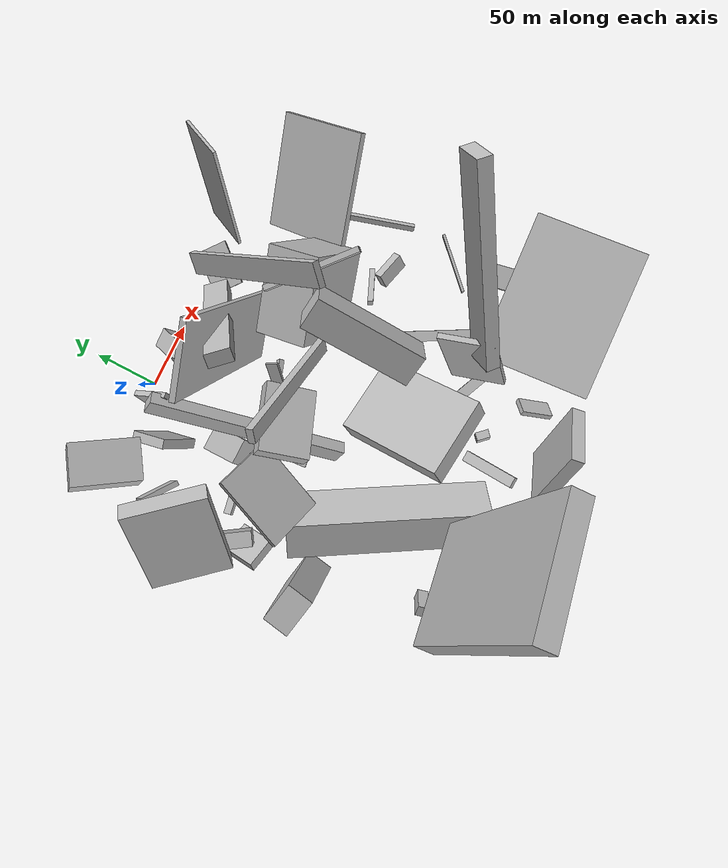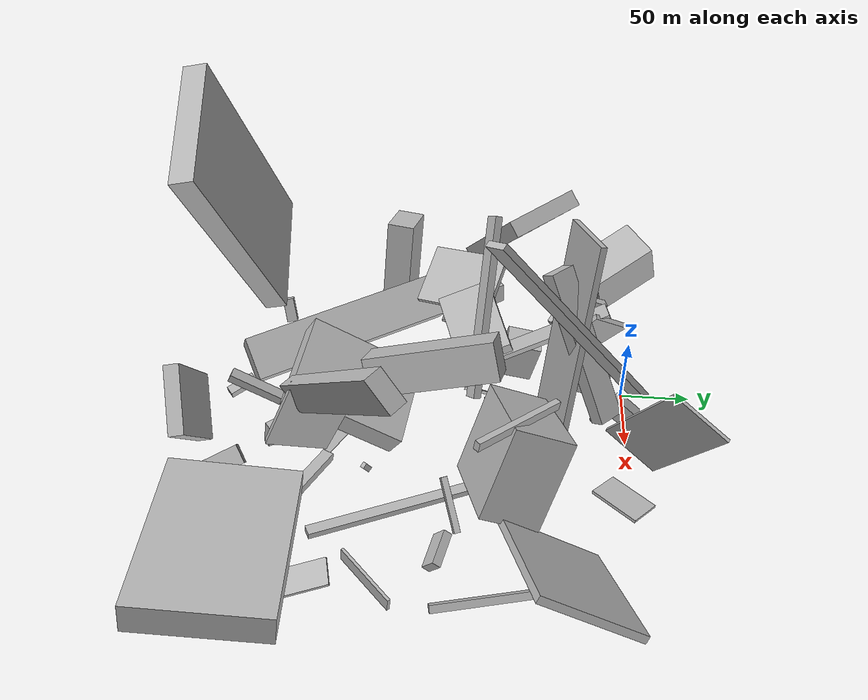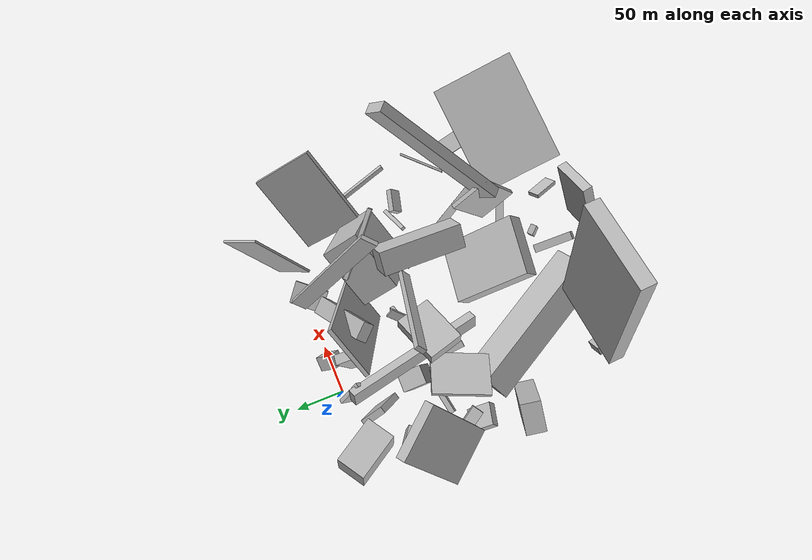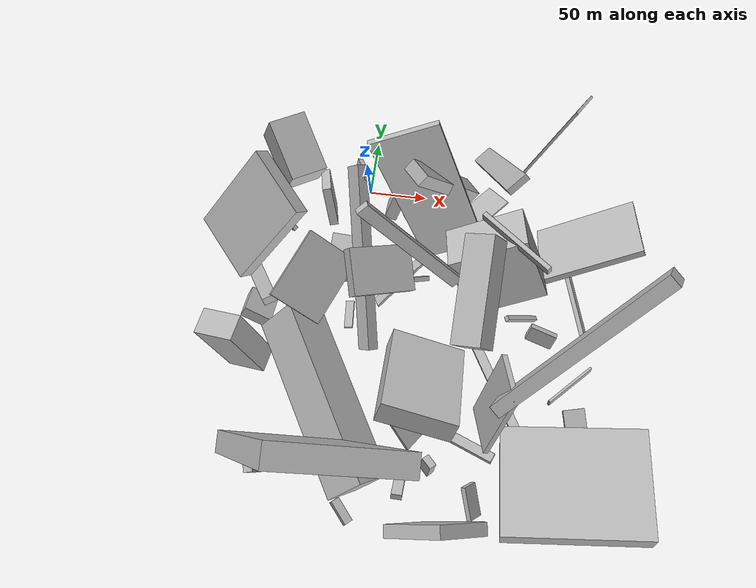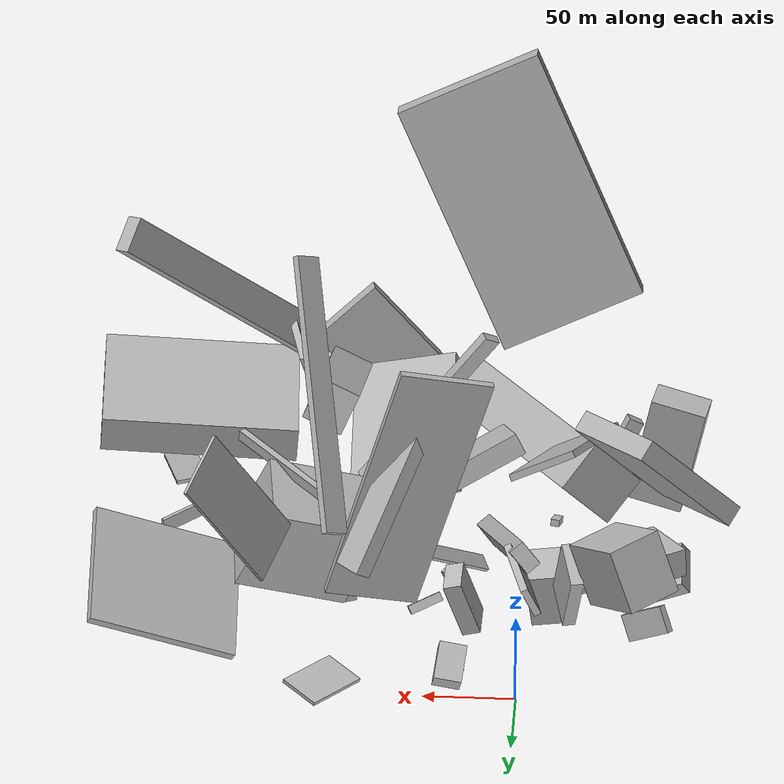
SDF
<sdf version="1.6">
 <world name="default">
  <model name="building_9">
   <static>0</static>
   <pose>188.99263234189795 -206.2920974212273 40.88188032204099 -0.5076138377383204 -1.4059636773756938 2.158943388256277</pose>
   <link name="link">
    <gravity>0</gravity>
    <pose>0 0 41.5 0 0 0</pose>
    <collision name="collision"><geometry><box><size>21 111 83</size></box></geometry></collision>
    <visual name="visual">
     <cast_shadows>0</cast_shadows>
     <geometry><box><size>21 111 83</size></box></geometry>
     <material>
      <script>
       <uri>model://HANNAS_wall/materials/scripts</uri>
       <uri>model://HANNAS_wall/materials/textures</uri>
       <name>vrc/HANNAS_wall</name>
      </script>
     </material>
    </visual>
   </link>
  </model>
  <model name="building_12">
   <static>0</static>
   <pose>36.43783945632152 -56.415086707224035 93.39397756460609 1.319394883167001 0.18490135291637388 1.8094403178664418</pose>
   <link name="link">
    <gravity>0</gravity>
    <pose>0 0 26.0 0 0 0</pose>
    <collision name="collision"><geometry><box><size>4 150 52</size></box></geometry></collision>
    <visual name="visual">
     <cast_shadows>0</cast_shadows>
     <geometry><box><size>4 150 52</size></box></geometry>
     <material>
      <script>
       <uri>model://HANNAS_wall/materials/scripts</uri>
       <uri>model://HANNAS_wall/materials/textures</uri>
       <name>vrc/HANNAS_wall</name>
      </script>
     </material>
    </visual>
   </link>
  </model>
  <model name="building_13">
   <static>0</static>
   <pose>4.541242665139622 -199.0029150911518 39.2001053849819 0.11401677543668397 -0.7849685948232833 0.43894558370145736</pose>
   <link name="link">
    <gravity>0</gravity>
    <pose>0 0 15.0 0 0 0</pose>
    <collision name="collision"><geometry><box><size>39 146 30</size></box></geometry></collision>
    <visual name="visual">
     <cast_shadows>0</cast_shadows>
     <geometry><box><size>39 146 30</size></box></geometry>
     <material>
      <script>
       <uri>model://HANNAS_wall/materials/scripts</uri>
       <uri>model://HANNAS_wall/materials/textures</uri>
       <name>vrc/HANNAS_wall</name>
      </script>
     </material>
    </visual>
   </link>
  </model>
  <model name="building_19">
   <static>0</static>
   <pose>130.17571120895607 -76.24500823772865 95.04811241446001 1.527997702878056 -0.19923877381190633 -0.7321909864977894</pose>
   <link name="link">
    <gravity>0</gravity>
    <pose>0 0 2.0 0 0 0</pose>
    <collision name="collision"><geometry><box><size>71 6 4</size></box></geometry></collision>
    <visual name="visual">
     <cast_shadows>0</cast_shadows>
     <geometry><box><size>71 6 4</size></box></geometry>
     <material>
      <script>
       <uri>model://HANNAS_wall/materials/scripts</uri>
       <uri>model://HANNAS_wall/materials/textures</uri>
       <name>vrc/HANNAS_wall</name>
      </script>
     </material>
    </visual>
   </link>
  </model>
  <model name="building_25">
   <static>0</static>
   <pose>-75.09184787761521 -161.69758410777274 62.96404291163516 1.5248915138746673 -0.2124035435861753 -0.1542566998762562</pose>
   <link name="link">
    <gravity>0</gravity>
    <pose>0 0 10.0 0 0 0</pose>
    <collision name="collision"><geometry><box><size>31 64 20</size></box></geometry></collision>
    <visual name="visual">
     <cast_shadows>0</cast_shadows>
     <geometry><box><size>31 64 20</size></box></geometry>
     <material>
      <script>
       <uri>model://HANNAS_wall/materials/scripts</uri>
       <uri>model://HANNAS_wall/materials/textures</uri>
       <name>vrc/HANNAS_wall</name>
      </script>
     </material>
    </visual>
   </link>
  </model>
  <model name="building_27">
   <static>0</static>
   <pose>87.28413426815335 -106.59786719551991 74.59919010898665 0.41591045670004245 0.5016341774629062 -2.5183528324176296</pose>
   <link name="link">
    <gravity>0</gravity>
    <pose>0 0 57.5 0 0 0</pose>
    <collision name="collision"><geometry><box><size>10 5 115</size></box></geometry></collision>
    <visual name="visual">
     <cast_shadows>0</cast_shadows>
     <geometry><box><size>10 5 115</size></box></geometry>
     <material>
      <script>
       <uri>model://HANNAS_wall/materials/scripts</uri>
       <uri>model://HANNAS_wall/materials/textures</uri>
       <name>vrc/HANNAS_wall</name>
      </script>
     </material>
    </visual>
   </link>
  </model>
  <model name="building_32">
   <static>0</static>
   <pose>117.97321559626538 -216.23568642915737 55.36386230536314 -0.2993002425979143 -0.3253679053886669 -1.2873279627586376</pose>
   <link name="link">
    <gravity>0</gravity>
    <pose>0 0 35.0 0 0 0</pose>
    <collision name="collision"><geometry><box><size>39 4 70</size></box></geometry></collision>
    <visual name="visual">
     <cast_shadows>0</cast_shadows>
     <geometry><box><size>39 4 70</size></box></geometry>
     <material>
      <script>
       <uri>model://HANNAS_wall/materials/scripts</uri>
       <uri>model://HANNAS_wall/materials/textures</uri>
       <name>vrc/HANNAS_wall</name>
      </script>
     </material>
    </visual>
   </link>
  </model>
  <model name="building_33">
   <static>0</static>
   <pose>88.63600559604822 -21.531863901675262 64.27053708664766 -0.008276025826326314 0.5534886278040121 -2.3892258149608083</pose>
   <link name="link">
    <gravity>0</gravity>
    <pose>0 0 50.5 0 0 0</pose>
    <collision name="collision"><geometry><box><size>10 17 101</size></box></geometry></collision>
    <visual name="visual">
     <cast_shadows>0</cast_shadows>
     <geometry><box><size>10 17 101</size></box></geometry>
     <material>
      <script>
       <uri>model://HANNAS_wall/materials/scripts</uri>
       <uri>model://HANNAS_wall/materials/textures</uri>
       <name>vrc/HANNAS_wall</name>
      </script>
     </material>
    </visual>
   </link>
  </model>
  <model name="building_35">
   <static>0</static>
   <pose>126.36740090806344 -208.7885408143765 107.23726204996753 0.8593568156778081 -0.2245631139838922 2.4088464889971783</pose>
   <link name="link">
    <gravity>0</gravity>
    <pose>0 0 75.0 0 0 0</pose>
    <collision name="collision"><geometry><box><size>10 20 150</size></box></geometry></collision>
    <visual name="visual">
     <cast_shadows>0</cast_shadows>
     <geometry><box><size>10 20 150</size></box></geometry>
     <material>
      <script>
       <uri>model://HANNAS_wall/materials/scripts</uri>
       <uri>model://HANNAS_wall/materials/textures</uri>
       <name>vrc/HANNAS_wall</name>
      </script>
     </material>
    </visual>
   </link>
  </model>
  <model name="building_42">
   <static>0</static>
   <pose>193.77945801608234 -45.64378292756978 37.53339148126348 0.45912615104211196 -0.5126503913420186 -1.5301564673933794</pose>
   <link name="link">
    <gravity>0</gravity>
    <pose>0 0 2.5 0 0 0</pose>
    <collision name="collision"><geometry><box><size>70 85 5</size></box></geometry></collision>
    <visual name="visual">
     <cast_shadows>0</cast_shadows>
     <geometry><box><size>70 85 5</size></box></geometry>
     <material>
      <script>
       <uri>model://HANNAS_wall/materials/scripts</uri>
       <uri>model://HANNAS_wall/materials/textures</uri>
       <name>vrc/HANNAS_wall</name>
      </script>
     </material>
    </visual>
   </link>
  </model>
  <model name="building_46">
   <static>0</static>
   <pose>155.00696631999432 -111.8103376263063 23.748299713154537 -0.05401651653189584 -0.8682239029723609 0.4713407362368202</pose>
   <link name="link">
    <gravity>0</gravity>
    <pose>0 0 17.5 0 0 0</pose>
    <collision name="collision"><geometry><box><size>4 4 35</size></box></geometry></collision>
    <visual name="visual">
     <cast_shadows>0</cast_shadows>
     <geometry><box><size>4 4 35</size></box></geometry>
     <material>
      <script>
       <uri>model://HANNAS_wall/materials/scripts</uri>
       <uri>model://HANNAS_wall/materials/textures</uri>
       <name>vrc/HANNAS_wall</name>
      </script>
     </material>
    </visual>
   </link>
  </model>
  <model name="building_50">
   <static>0</static>
   <pose>-53.64200670265925 -102.94198032306673 96.41009918005673 1.4290139397615746 -0.7865368948294857 -2.332572762505514</pose>
   <link name="link">
    <gravity>0</gravity>
    <pose>0 0 28.5 0 0 0</pose>
    <collision name="collision"><geometry><box><size>12 81 57</size></box></geometry></collision>
    <visual name="visual">
     <cast_shadows>0</cast_shadows>
     <geometry><box><size>12 81 57</size></box></geometry>
     <material>
      <script>
       <uri>model://HANNAS_wall/materials/scripts</uri>
       <uri>model://HANNAS_wall/materials/textures</uri>
       <name>vrc/HANNAS_wall</name>
      </script>
     </material>
    </visual>
   </link>
  </model>
  <model name="building_52">
   <static>0</static>
   <pose>132.15696663987652 -229.1655775874666 9.116641134757423 -2.5685505313746813 -1.4608628108774921 2.172176954010982</pose>
   <link name="link">
    <gravity>0</gravity>
    <pose>0 0 28.5 0 0 0</pose>
    <collision name="collision"><geometry><box><size>6 8 57</size></box></geometry></collision>
    <visual name="visual">
     <cast_shadows>0</cast_shadows>
     <geometry><box><size>6 8 57</size></box></geometry>
     <material>
      <script>
       <uri>model://HANNAS_wall/materials/scripts</uri>
       <uri>model://HANNAS_wall/materials/textures</uri>
       <name>vrc/HANNAS_wall</name>
      </script>
     </material>
    </visual>
   </link>
  </model>
  <model name="building_54">
   <static>0</static>
   <pose>-3.0955800666413715 -127.08798240169963 75.23317242375342 0.2874428956834237 -0.9980560095499964 -0.6626357192031521</pose>
   <link name="link">
    <gravity>0</gravity>
    <pose>0 0 21.5 0 0 0</pose>
    <collision name="collision"><geometry><box><size>4 57 43</size></box></geometry></collision>
    <visual name="visual">
     <cast_shadows>0</cast_shadows>
     <geometry><box><size>4 57 43</size></box></geometry>
     <material>
      <script>
       <uri>model://HANNAS_wall/materials/scripts</uri>
       <uri>model://HANNAS_wall/materials/textures</uri>
       <name>vrc/HANNAS_wall</name>
      </script>
     </material>
    </visual>
   </link>
  </model>
  <model name="building_58">
   <static>0</static>
   <pose>-62.47073913357587 -6.6394530027085095 61.34676620785726 0.19669176704112493 -0.36563890039754615 2.1048771639164974</pose>
   <link name="link">
    <gravity>0</gravity>
    <pose>0 0 17.5 0 0 0</pose>
    <collision name="collision"><geometry><box><size>48 30 35</size></box></geometry></collision>
    <visual name="visual">
     <cast_shadows>0</cast_shadows>
     <geometry><box><size>48 30 35</size></box></geometry>
     <material>
      <script>
       <uri>model://HANNAS_wall/materials/scripts</uri>
       <uri>model://HANNAS_wall/materials/textures</uri>
       <name>vrc/HANNAS_wall</name>
      </script>
     </material>
    </visual>
   </link>
  </model>
  <model name="building_68">
   <static>0</static>
   <pose>5.256507655177185 -86.90786178527286 50.413180572393436 2.5207611811496866 0.8307474597293015 2.834807596647406</pose>
   <link name="link">
    <gravity>0</gravity>
    <pose>0 0 4.5 0 0 0</pose>
    <collision name="collision"><geometry><box><size>15 150 9</size></box></geometry></collision>
    <visual name="visual">
     <cast_shadows>0</cast_shadows>
     <geometry><box><size>15 150 9</size></box></geometry>
     <material>
      <script>
       <uri>model://HANNAS_wall/materials/scripts</uri>
       <uri>model://HANNAS_wall/materials/textures</uri>
       <name>vrc/HANNAS_wall</name>
      </script>
     </material>
    </visual>
   </link>
  </model>
  <model name="building_70">
   <static>0</static>
   <pose>61.94666622010045 -79.79262355864357 7.14680538453102 1.19831154518635 0.4937904822263501 -1.3992327767689834</pose>
   <link name="link">
    <gravity>0</gravity>
    <pose>0 0 9.5 0 0 0</pose>
    <collision name="collision"><geometry><box><size>4 5 19</size></box></geometry></collision>
    <visual name="visual">
     <cast_shadows>0</cast_shadows>
     <geometry><box><size>4 5 19</size></box></geometry>
     <material>
      <script>
       <uri>model://HANNAS_wall/materials/scripts</uri>
       <uri>model://HANNAS_wall/materials/textures</uri>
       <name>vrc/HANNAS_wall</name>
      </script>
     </material>
    </visual>
   </link>
  </model>
  <model name="building_77">
   <static>0</static>
   <pose>-5.393950789484571 -35.39091506603029 46.39335104903714 0.5897408686049146 -0.3733254905814361 -2.954361127344352</pose>
   <link name="link">
    <gravity>0</gravity>
    <pose>0 0 17.0 0 0 0</pose>
    <collision name="collision"><geometry><box><size>4 29 34</size></box></geometry></collision>
    <visual name="visual">
     <cast_shadows>0</cast_shadows>
     <geometry><box><size>4 29 34</size></box></geometry>
     <material>
      <script>
       <uri>model://HANNAS_wall/materials/scripts</uri>
       <uri>model://HANNAS_wall/materials/textures</uri>
       <name>vrc/HANNAS_wall</name>
      </script>
     </material>
    </visual>
   </link>
  </model>
  <model name="building_78">
   <static>0</static>
   <pose>-15.572127397359285 -179.11635383153853 12.439783926764356 -1.4617685300752634 -0.018715266342240675 -0.2713216189841278</pose>
   <link name="link">
    <gravity>0</gravity>
    <pose>0 0 3.5 0 0 0</pose>
    <collision name="collision"><geometry><box><size>5 4 7</size></box></geometry></collision>
    <visual name="visual">
     <cast_shadows>0</cast_shadows>
     <geometry><box><size>5 4 7</size></box></geometry>
     <material>
      <script>
       <uri>model://HANNAS_wall/materials/scripts</uri>
       <uri>model://HANNAS_wall/materials/textures</uri>
       <name>vrc/HANNAS_wall</name>
      </script>
     </material>
    </visual>
   </link>
  </model>
  <model name="building_79">
   <static>0</static>
   <pose>150.64885297839666 -207.84983615971902 8.758645481009943 -2.6347344374910953 1.4486290303224207 -0.5579550272427803</pose>
   <link name="link">
    <gravity>0</gravity>
    <pose>0 0 56.5 0 0 0</pose>
    <collision name="collision"><geometry><box><size>4 8 113</size></box></geometry></collision>
    <visual name="visual">
     <cast_shadows>0</cast_shadows>
     <geometry><box><size>4 8 113</size></box></geometry>
     <material>
      <script>
       <uri>model://HANNAS_wall/materials/scripts</uri>
       <uri>model://HANNAS_wall/materials/textures</uri>
       <name>vrc/HANNAS_wall</name>
      </script>
     </material>
    </visual>
   </link>
  </model>
  <model name="building_84">
   <static>0</static>
   <pose>114.95414753383233 -60.92154226704062 47.22754617410052 1.1436150318657143 -0.31716838454540097 0.2866389977388964</pose>
   <link name="link">
    <gravity>0</gravity>
    <pose>0 0 20.0 0 0 0</pose>
    <collision name="collision"><geometry><box><size>64 61 40</size></box></geometry></collision>
    <visual name="visual">
     <cast_shadows>0</cast_shadows>
     <geometry><box><size>64 61 40</size></box></geometry>
     <material>
      <script>
       <uri>model://HANNAS_wall/materials/scripts</uri>
       <uri>model://HANNAS_wall/materials/textures</uri>
       <name>vrc/HANNAS_wall</name>
      </script>
     </material>
    </visual>
   </link>
  </model>
  <model name="building_93">
   <static>0</static>
   <pose>32.38982390780707 -125.629938968056 79.91414015770374 -1.2164814923385863 0.3965378440173269 0.38808967260788607</pose>
   <link name="link">
    <gravity>0</gravity>
    <pose>0 0 18.0 0 0 0</pose>
    <collision name="collision"><geometry><box><size>50 12 36</size></box></geometry></collision>
    <visual name="visual">
     <cast_shadows>0</cast_shadows>
     <geometry><box><size>50 12 36</size></box></geometry>
     <material>
      <script>
       <uri>model://HANNAS_wall/materials/scripts</uri>
       <uri>model://HANNAS_wall/materials/textures</uri>
       <name>vrc/HANNAS_wall</name>
      </script>
     </material>
    </visual>
   </link>
  </model>
  <model name="building_97">
   <static>0</static>
   <pose>97.0037992510102 -6.189766513286463 94.83174843575418 -0.5584461541876407 0.3621641592515689 -2.3894980323687056</pose>
   <link name="link">
    <gravity>0</gravity>
    <pose>0 0 75.0 0 0 0</pose>
    <collision name="collision"><geometry><box><size>15 4 150</size></box></geometry></collision>
    <visual name="visual">
     <cast_shadows>0</cast_shadows>
     <geometry><box><size>15 4 150</size></box></geometry>
     <material>
      <script>
       <uri>model://HANNAS_wall/materials/scripts</uri>
       <uri>model://HANNAS_wall/materials/textures</uri>
       <name>vrc/HANNAS_wall</name>
      </script>
     </material>
    </visual>
   </link>
  </model>
  <model name="building_98">
   <static>0</static>
   <pose>121.06099111650747 -263.7805139013072 28.60274595353453 0.5277088993427566 -0.6980433612679758 -0.04271034023610219</pose>
   <link name="link">
    <gravity>0</gravity>
    <pose>0 0 6.5 0 0 0</pose>
    <collision name="collision"><geometry><box><size>4 26 13</size></box></geometry></collision>
    <visual name="visual">
     <cast_shadows>0</cast_shadows>
     <geometry><box><size>4 26 13</size></box></geometry>
     <material>
      <script>
       <uri>model://HANNAS_wall/materials/scripts</uri>
       <uri>model://HANNAS_wall/materials/textures</uri>
       <name>vrc/HANNAS_wall</name>
      </script>
     </material>
    </visual>
   </link>
  </model>
  <model name="building_99">
   <static>0</static>
   <pose>-19.974798824337938 -252.5264427523147 101.73915300318075 0.41968309603949033 -0.1832129667645532 1.6037552903806749</pose>
   <link name="link">
    <gravity>0</gravity>
    <pose>0 0 75.0 0 0 0</pose>
    <collision name="collision"><geometry><box><size>15 85 150</size></box></geometry></collision>
    <visual name="visual">
     <cast_shadows>0</cast_shadows>
     <geometry><box><size>15 85 150</size></box></geometry>
     <material>
      <script>
       <uri>model://HANNAS_wall/materials/scripts</uri>
       <uri>model://HANNAS_wall/materials/textures</uri>
       <name>vrc/HANNAS_wall</name>
      </script>
     </material>
    </visual>
   </link>
  </model>
  <model name="building_101">
   <static>0</static>
   <pose>90.6085542176134 -177.9893787751117 4.845292110996681 1.904249049998149 0.53871629351348 -0.6276196236221332</pose>
   <link name="link">
    <gravity>0</gravity>
    <pose>0 0 2.0 0 0 0</pose>
    <collision name="collision"><geometry><box><size>4 6 4</size></box></geometry></collision>
    <visual name="visual">
     <cast_shadows>0</cast_shadows>
     <geometry><box><size>4 6 4</size></box></geometry>
     <material>
      <script>
       <uri>model://HANNAS_wall/materials/scripts</uri>
       <uri>model://HANNAS_wall/materials/textures</uri>
       <name>vrc/HANNAS_wall</name>
      </script>
     </material>
    </visual>
   </link>
  </model>
  <model name="building_108">
   <static>0</static>
   <pose>-22.16856506814051 -77.6774312852764 27.452258759398823 -1.697097338726337 -0.21162660008305614 -1.540057058186084</pose>
   <link name="link">
    <gravity>0</gravity>
    <pose>0 0 9.5 0 0 0</pose>
    <collision name="collision"><geometry><box><size>25 33 19</size></box></geometry></collision>
    <visual name="visual">
     <cast_shadows>0</cast_shadows>
     <geometry><box><size>25 33 19</size></box></geometry>
     <material>
      <script>
       <uri>model://HANNAS_wall/materials/scripts</uri>
       <uri>model://HANNAS_wall/materials/textures</uri>
       <name>vrc/HANNAS_wall</name>
      </script>
     </material>
    </visual>
   </link>
  </model>
  <model name="building_111">
   <static>0</static>
   <pose>-64.81422450932719 -123.8154267118015 29.896186390526132 -0.3549209351042798 -1.5048103104821182 -0.6378975023067814</pose>
   <link name="link">
    <gravity>0</gravity>
    <pose>0 0 17.0 0 0 0</pose>
    <collision name="collision"><geometry><box><size>16 12 34</size></box></geometry></collision>
    <visual name="visual">
     <cast_shadows>0</cast_shadows>
     <geometry><box><size>16 12 34</size></box></geometry>
     <material>
      <script>
       <uri>model://HANNAS_wall/materials/scripts</uri>
       <uri>model://HANNAS_wall/materials/textures</uri>
       <name>vrc/HANNAS_wall</name>
      </script>
     </material>
    </visual>
   </link>
  </model>
  <model name="building_115">
   <static>0</static>
   <pose>141.0685982716375 -12.816257305980415 121.86690648148239 2.121806286571211 -0.25320316769243567 2.573996962562446</pose>
   <link name="link">
    <gravity>0</gravity>
    <pose>0 0 18.5 0 0 0</pose>
    <collision name="collision"><geometry><box><size>2 80 37</size></box></geometry></collision>
    <visual name="visual">
     <cast_shadows>0</cast_shadows>
     <geometry><box><size>2 80 37</size></box></geometry>
     <material>
      <script>
       <uri>model://HANNAS_wall/materials/scripts</uri>
       <uri>model://HANNAS_wall/materials/textures</uri>
       <name>vrc/HANNAS_wall</name>
      </script>
     </material>
    </visual>
   </link>
  </model>
  <model name="building_116">
   <static>0</static>
   <pose>15.058156239262946 -286.50752900640816 6.975154273047777 -2.582803474088564 -1.2300198938770073 0.16085480832842552</pose>
   <link name="link">
    <gravity>0</gravity>
    <pose>0 0 3.5 0 0 0</pose>
    <collision name="collision"><geometry><box><size>6 21 7</size></box></geometry></collision>
    <visual name="visual">
     <cast_shadows>0</cast_shadows>
     <geometry><box><size>6 21 7</size></box></geometry>
     <material>
      <script>
       <uri>model://HANNAS_wall/materials/scripts</uri>
       <uri>model://HANNAS_wall/materials/textures</uri>
       <name>vrc/HANNAS_wall</name>
      </script>
     </material>
    </visual>
   </link>
  </model>
  <model name="building_126">
   <static>0</static>
   <pose>-58.22047722349818 -51.78536373536729 16.780381469939783 1.0401880805190054 0.1027336624144195 -2.2653221546711206</pose>
   <link name="link">
    <gravity>0</gravity>
    <pose>0 0 15.0 0 0 0</pose>
    <collision name="collision"><geometry><box><size>4 15 30</size></box></geometry></collision>
    <visual name="visual">
     <cast_shadows>0</cast_shadows>
     <geometry><box><size>4 15 30</size></box></geometry>
     <material>
      <script>
       <uri>model://HANNAS_wall/materials/scripts</uri>
       <uri>model://HANNAS_wall/materials/textures</uri>
       <name>vrc/HANNAS_wall</name>
      </script>
     </material>
    </visual>
   </link>
  </model>
  <model name="building_128">
   <static>0</static>
   <pose>80.34368426141758 -244.83304551099343 15.668406919190724 0.05987941541479943 -0.19570311312839841 -2.3812305642813176</pose>
   <link name="link">
    <gravity>0</gravity>
    <pose>0 0 10.0 0 0 0</pose>
    <collision name="collision"><geometry><box><size>6 10 20</size></box></geometry></collision>
    <visual name="visual">
     <cast_shadows>0</cast_shadows>
     <geometry><box><size>6 10 20</size></box></geometry>
     <material>
      <script>
       <uri>model://HANNAS_wall/materials/scripts</uri>
       <uri>model://HANNAS_wall/materials/textures</uri>
       <name>vrc/HANNAS_wall</name>
      </script>
     </material>
    </visual>
   </link>
  </model>
  <model name="building_136">
   <static>0</static>
   <pose>103.40681677770371 -168.22778829423567 105.93141304862075 -1.005566578458033 1.080361650588087 0.48768338225531455</pose>
   <link name="link">
    <gravity>0</gravity>
    <pose>0 0 40.0 0 0 0</pose>
    <collision name="collision"><geometry><box><size>24 23 80</size></box></geometry></collision>
    <visual name="visual">
     <cast_shadows>0</cast_shadows>
     <geometry><box><size>24 23 80</size></box></geometry>
     <material>
      <script>
       <uri>model://HANNAS_wall/materials/scripts</uri>
       <uri>model://HANNAS_wall/materials/textures</uri>
       <name>vrc/HANNAS_wall</name>
      </script>
     </material>
    </visual>
   </link>
  </model>
  <model name="building_138">
   <static>0</static>
   <pose>-47.93970931276706 -258.34465054563753 17.369901685136842 -0.11338924852145801 0.490370506443217 -2.960701322171175</pose>
   <link name="link">
    <gravity>0</gravity>
    <pose>0 0 9.0 0 0 0</pose>
    <collision name="collision"><geometry><box><size>9 8 18</size></box></geometry></collision>
    <visual name="visual">
     <cast_shadows>0</cast_shadows>
     <geometry><box><size>9 8 18</size></box></geometry>
     <material>
      <script>
       <uri>model://HANNAS_wall/materials/scripts</uri>
       <uri>model://HANNAS_wall/materials/textures</uri>
       <name>vrc/HANNAS_wall</name>
      </script>
     </material>
    </visual>
   </link>
  </model>
  <model name="building_140">
   <static>0</static>
   <pose>68.82470220245824 -153.3009785037837 42.14203907784232 0.4312984984007587 -0.9759398550444025 1.0876894285334808</pose>
   <link name="link">
    <gravity>0</gravity>
    <pose>0 0 40.0 0 0 0</pose>
    <collision name="collision"><geometry><box><size>19 59 80</size></box></geometry></collision>
    <visual name="visual">
     <cast_shadows>0</cast_shadows>
     <geometry><box><size>19 59 80</size></box></geometry>
     <material>
      <script>
       <uri>model://HANNAS_wall/materials/scripts</uri>
       <uri>model://HANNAS_wall/materials/textures</uri>
       <name>vrc/HANNAS_wall</name>
      </script>
     </material>
    </visual>
   </link>
  </model>
  <model name="building_154">
   <static>0</static>
   <pose>-77.17130345646304 -136.59930092313562 16.664056481490583 -2.1137998256571318 0.446727118337962 -0.22731654057228753</pose>
   <link name="link">
    <gravity>0</gravity>
    <pose>0 0 13.5 0 0 0</pose>
    <collision name="collision"><geometry><box><size>24 10 27</size></box></geometry></collision>
    <visual name="visual">
     <cast_shadows>0</cast_shadows>
     <geometry><box><size>24 10 27</size></box></geometry>
     <material>
      <script>
       <uri>model://HANNAS_wall/materials/scripts</uri>
       <uri>model://HANNAS_wall/materials/textures</uri>
       <name>vrc/HANNAS_wall</name>
      </script>
     </material>
    </visual>
   </link>
  </model>
  <model name="building_155">
   <static>0</static>
   <pose>108.96283075471558 -288.56395107305656 44.48908153487604 0.16038187646957763 -0.8543249615840399 0.03127807475793609</pose>
   <link name="link">
    <gravity>0</gravity>
    <pose>0 0 22.5 0 0 0</pose>
    <collision name="collision"><geometry><box><size>62 10 45</size></box></geometry></collision>
    <visual name="visual">
     <cast_shadows>0</cast_shadows>
     <geometry><box><size>62 10 45</size></box></geometry>
     <material>
      <script>
       <uri>model://HANNAS_wall/materials/scripts</uri>
       <uri>model://HANNAS_wall/materials/textures</uri>
       <name>vrc/HANNAS_wall</name>
      </script>
     </material>
    </visual>
   </link>
  </model>
  <model name="building_160">
   <static>0</static>
   <pose>-23.882730387760784 -42.65525345988743 35.0144166998248 -0.024859701573894607 0.43447777288372597 1.8262634089793355</pose>
   <link name="link">
    <gravity>0</gravity>
    <pose>0 0 18.5 0 0 0</pose>
    <collision name="collision"><geometry><box><size>27 7 37</size></box></geometry></collision>
    <visual name="visual">
     <cast_shadows>0</cast_shadows>
     <geometry><box><size>27 7 37</size></box></geometry>
     <material>
      <script>
       <uri>model://HANNAS_wall/materials/scripts</uri>
       <uri>model://HANNAS_wall/materials/textures</uri>
       <name>vrc/HANNAS_wall</name>
      </script>
     </material>
    </visual>
   </link>
  </model>
  <model name="building_162">
   <static>0</static>
   <pose>204.02795934362416 -239.37944293152867 14.994758796985458 1.3600264880968935 -0.12331547867697695 -2.8793720329769585</pose>
   <link name="link">
    <gravity>0</gravity>
    <pose>0 0 28.5 0 0 0</pose>
    <collision name="collision"><geometry><box><size>18 2 57</size></box></geometry></collision>
    <visual name="visual">
     <cast_shadows>0</cast_shadows>
     <geometry><box><size>18 2 57</size></box></geometry>
     <material>
      <script>
       <uri>model://HANNAS_wall/materials/scripts</uri>
       <uri>model://HANNAS_wall/materials/textures</uri>
       <name>vrc/HANNAS_wall</name>
      </script>
     </material>
    </visual>
   </link>
  </model>
  <model name="building_163">
   <static>0</static>
   <pose>53.495085628109386 -199.58266428509793 27.18942992198559 -2.149864519324354 -0.41844656046600415 -2.1313673247878495</pose>
   <link name="link">
    <gravity>0</gravity>
    <pose>0 0 15.5 0 0 0</pose>
    <collision name="collision"><geometry><box><size>33 2 31</size></box></geometry></collision>
    <visual name="visual">
     <cast_shadows>0</cast_shadows>
     <geometry><box><size>33 2 31</size></box></geometry>
     <material>
      <script>
       <uri>model://HANNAS_wall/materials/scripts</uri>
       <uri>model://HANNAS_wall/materials/textures</uri>
       <name>vrc/HANNAS_wall</name>
      </script>
     </material>
    </visual>
   </link>
  </model>
  <model name="building_164">
   <static>0</static>
   <pose>22.506111519393173 -112.19443037733151 20.017216020061802 -0.9967551578518585 -0.494504883868818 -1.1126999780126987</pose>
   <link name="link">
    <gravity>0</gravity>
    <pose>0 0 28.0 0 0 0</pose>
    <collision name="collision"><geometry><box><size>10 2 56</size></box></geometry></collision>
    <visual name="visual">
     <cast_shadows>0</cast_shadows>
     <geometry><box><size>10 2 56</size></box></geometry>
     <material>
      <script>
       <uri>model://HANNAS_wall/materials/scripts</uri>
       <uri>model://HANNAS_wall/materials/textures</uri>
       <name>vrc/HANNAS_wall</name>
      </script>
     </material>
    </visual>
   </link>
  </model>
  <model name="building_165">
   <static>0</static>
   <pose>35.28316622889924 -24.574630991480053 8.130823953308855 -1.476731752308987 -0.48995278389119234 0.421701031083761</pose>
   <link name="link">
    <gravity>0</gravity>
    <pose>0 0 6.5 0 0 0</pose>
    <collision name="collision"><geometry><box><size>2 2 13</size></box></geometry></collision>
    <visual name="visual">
     <cast_shadows>0</cast_shadows>
     <geometry><box><size>2 2 13</size></box></geometry>
     <material>
      <script>
       <uri>model://HANNAS_wall/materials/scripts</uri>
       <uri>model://HANNAS_wall/materials/textures</uri>
       <name>vrc/HANNAS_wall</name>
      </script>
     </material>
    </visual>
   </link>
  </model>
  <model name="building_170">
   <static>0</static>
   <pose>173.5875216751359 -262.6299105504128 17.374248225617237 1.7824922038960476 1.0365385709570953 -2.85362059267276</pose>
   <link name="link">
    <gravity>0</gravity>
    <pose>0 0 1.0 0 0 0</pose>
    <collision name="collision"><geometry><box><size>7 6 2</size></box></geometry></collision>
    <visual name="visual">
     <cast_shadows>0</cast_shadows>
     <geometry><box><size>7 6 2</size></box></geometry>
     <material>
      <script>
       <uri>model://HANNAS_wall/materials/scripts</uri>
       <uri>model://HANNAS_wall/materials/textures</uri>
       <name>vrc/HANNAS_wall</name>
      </script>
     </material>
    </visual>
   </link>
  </model>
  <model name="building_171">
   <static>0</static>
   <pose>62.40128243003907 -253.5069605261528 51.29107460270586 2.638764667898181 -0.010266568979267804 -0.026932357414512182</pose>
   <link name="link">
    <gravity>0</gravity>
    <pose>0 0 3.0 0 0 0</pose>
    <collision name="collision"><geometry><box><size>8 41 6</size></box></geometry></collision>
    <visual name="visual">
     <cast_shadows>0</cast_shadows>
     <geometry><box><size>8 41 6</size></box></geometry>
     <material>
      <script>
       <uri>model://HANNAS_wall/materials/scripts</uri>
       <uri>model://HANNAS_wall/materials/textures</uri>
       <name>vrc/HANNAS_wall</name>
      </script>
     </material>
    </visual>
   </link>
  </model>
  <model name="building_185">
   <static>0</static>
   <pose>36.36489079850703 -6.566545829693682 13.932428138783116 0.22758853891524272 -0.710961257925331 -1.7216725357609102</pose>
   <link name="link">
    <gravity>0</gravity>
    <pose>0 0 6.5 0 0 0</pose>
    <collision name="collision"><geometry><box><size>21 15 13</size></box></geometry></collision>
    <visual name="visual">
     <cast_shadows>0</cast_shadows>
     <geometry><box><size>21 15 13</size></box></geometry>
     <material>
      <script>
       <uri>model://HANNAS_wall/materials/scripts</uri>
       <uri>model://HANNAS_wall/materials/textures</uri>
       <name>vrc/HANNAS_wall</name>
      </script>
     </material>
    </visual>
   </link>
  </model>
  <model name="building_186">
   <static>0</static>
   <pose>-0.4444344845109009 -122.16876488295205 11.874479608445695 -3.007922993747489 0.14198467956864358 -3.0291468928837832</pose>
   <link name="link">
    <gravity>0</gravity>
    <pose>0 0 1.0 0 0 0</pose>
    <collision name="collision"><geometry><box><size>7 25 2</size></box></geometry></collision>
    <visual name="visual">
     <cast_shadows>0</cast_shadows>
     <geometry><box><size>7 25 2</size></box></geometry>
     <material>
      <script>
       <uri>model://HANNAS_wall/materials/scripts</uri>
       <uri>model://HANNAS_wall/materials/textures</uri>
       <name>vrc/HANNAS_wall</name>
      </script>
     </material>
    </visual>
   </link>
  </model>
  <model name="building_195">
   <static>0</static>
   <pose>24.568486034599175 -30.391630335219766 29.63614718193567 0.2811524842010155 0.2675845354608281 1.5430441455943706</pose>
   <link name="link">
    <gravity>0</gravity>
    <pose>0 0 18.0 0 0 0</pose>
    <collision name="collision"><geometry><box><size>18 10 36</size></box></geometry></collision>
    <visual name="visual">
     <cast_shadows>0</cast_shadows>
     <geometry><box><size>18 10 36</size></box></geometry>
     <material>
      <script>
       <uri>model://HANNAS_wall/materials/scripts</uri>
       <uri>model://HANNAS_wall/materials/textures</uri>
       <name>vrc/HANNAS_wall</name>
      </script>
     </material>
    </visual>
   </link>
  </model>
  <model name="building_196">
   <static>0</static>
   <pose>-59.74491447157297 -99.13873984138168 21.73632327212638 1.7488691005044326 0.353684749441134 1.8155049914300292</pose>
   <link name="link">
    <gravity>0</gravity>
    <pose>0 0 24.5 0 0 0</pose>
    <collision name="collision"><geometry><box><size>6 4 49</size></box></geometry></collision>
    <visual name="visual">
     <cast_shadows>0</cast_shadows>
     <geometry><box><size>6 4 49</size></box></geometry>
     <material>
      <script>
       <uri>model://HANNAS_wall/materials/scripts</uri>
       <uri>model://HANNAS_wall/materials/textures</uri>
       <name>vrc/HANNAS_wall</name>
      </script>
     </material>
    </visual>
   </link>
  </model>
  <model name="building_197">
   <static>0</static>
   <pose>9.564747569964487 -120.53993559879866 24.258073530444804 0.4905205861021187 -0.5218947061394376 0.526683249198854</pose>
   <link name="link">
    <gravity>0</gravity>
    <pose>0 0 1.5 0 0 0</pose>
    <collision name="collision"><geometry><box><size>2 3 3</size></box></geometry></collision>
    <visual name="visual">
     <cast_shadows>0</cast_shadows>
     <geometry><box><size>2 3 3</size></box></geometry>
     <material>
      <script>
       <uri>model://HANNAS_wall/materials/scripts</uri>
       <uri>model://HANNAS_wall/materials/textures</uri>
       <name>vrc/HANNAS_wall</name>
      </script>
     </material>
    </visual>
   </link>
  </model>
  <model name="building_205">
   <static>0</static>
   <pose>188.24086596305003 -87.7971459516107 9.595916929023321 2.4994506473915954 0.0667588591999281 1.8507524071980228</pose>
   <link name="link">
    <gravity>0</gravity>
    <pose>0 0 2.5 0 0 0</pose>
    <collision name="collision"><geometry><box><size>78 4 5</size></box></geometry></collision>
    <visual name="visual">
     <cast_shadows>0</cast_shadows>
     <geometry><box><size>78 4 5</size></box></geometry>
     <material>
      <script>
       <uri>model://HANNAS_wall/materials/scripts</uri>
       <uri>model://HANNAS_wall/materials/textures</uri>
       <name>vrc/HANNAS_wall</name>
      </script>
     </material>
    </visual>
   </link>
  </model>
  <model name="building_207">
   <static>0</static>
   <pose>42.87590784089749 -91.63743851191983 22.90030222071824 -0.7348233524708888 1.0885447513237014 -3.1119537879300263</pose>
   <link name="link">
    <gravity>0</gravity>
    <pose>0 0 5.5 0 0 0</pose>
    <collision name="collision"><geometry><box><size>5 5 11</size></box></geometry></collision>
    <visual name="visual">
     <cast_shadows>0</cast_shadows>
     <geometry><box><size>5 5 11</size></box></geometry>
     <material>
      <script>
       <uri>model://HANNAS_wall/materials/scripts</uri>
       <uri>model://HANNAS_wall/materials/textures</uri>
       <name>vrc/HANNAS_wall</name>
      </script>
     </material>
    </visual>
   </link>
  </model>
  <model name="building_209">
   <static>0</static>
   <pose>162.67408665035106 -121.12095576444716 13.026646997277775 0.3062139375188692 -0.8977752648223188 1.0878300425056524</pose>
   <link name="link">
    <gravity>0</gravity>
    <pose>0 0 3.0 0 0 0</pose>
    <collision name="collision"><geometry><box><size>13 23 6</size></box></geometry></collision>
    <visual name="visual">
     <cast_shadows>0</cast_shadows>
     <geometry><box><size>13 23 6</size></box></geometry>
     <material>
      <script>
       <uri>model://HANNAS_wall/materials/scripts</uri>
       <uri>model://HANNAS_wall/materials/textures</uri>
       <name>vrc/HANNAS_wall</name>
      </script>
     </material>
    </visual>
   </link>
  </model>
  <model name="building_211">
   <static>0</static>
   <pose>188.4524837479196 -164.62877949624533 13.657599389895585 0.08660102413139455 -0.04754549646399738 -2.349271310769623</pose>
   <link name="link">
    <gravity>0</gravity>
    <pose>0 0 4.5 0 0 0</pose>
    <collision name="collision"><geometry><box><size>46 2 9</size></box></geometry></collision>
    <visual name="visual">
     <cast_shadows>0</cast_shadows>
     <geometry><box><size>46 2 9</size></box></geometry>
     <material>
      <script>
       <uri>model://HANNAS_wall/materials/scripts</uri>
       <uri>model://HANNAS_wall/materials/textures</uri>
       <name>vrc/HANNAS_wall</name>
      </script>
     </material>
    </visual>
   </link>
  </model>
  <model name="building_214">
   <static>0</static>
   <pose>93.12620695817633 -18.09761790676939 5.368631636461016 1.6075090829808267 -1.358530769246656 2.4016771579949237</pose>
   <link name="link">
    <gravity>0</gravity>
    <pose>0 0 17.5 0 0 0</pose>
    <collision name="collision"><geometry><box><size>2 24 35</size></box></geometry></collision>
    <visual name="visual">
     <cast_shadows>0</cast_shadows>
     <geometry><box><size>2 24 35</size></box></geometry>
     <material>
      <script>
       <uri>model://HANNAS_wall/materials/scripts</uri>
       <uri>model://HANNAS_wall/materials/textures</uri>
       <name>vrc/HANNAS_wall</name>
      </script>
     </material>
    </visual>
   </link>
  </model>
 </world>
</sdf>
